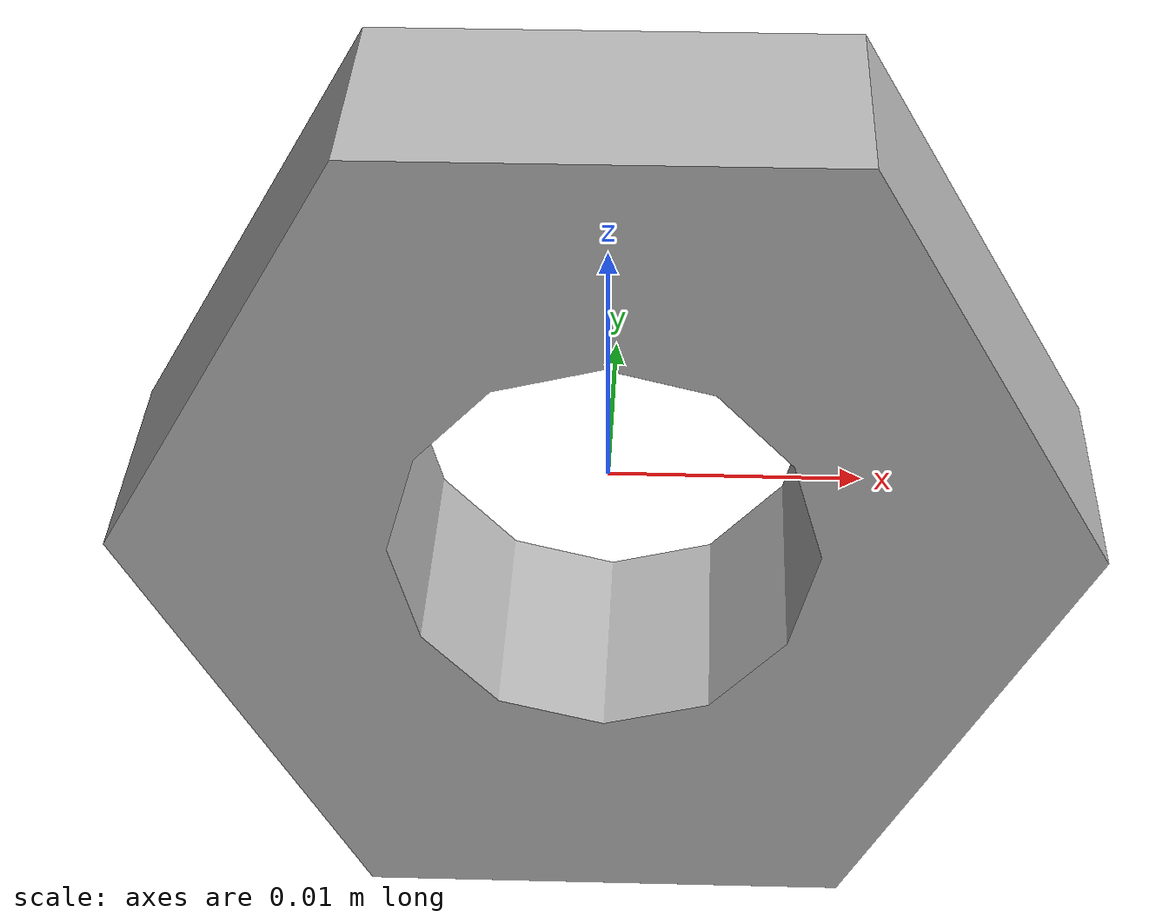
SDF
<?xml version='1.0'?>
<sdf version="1.3">

  <model name="Nut">
    <pose> 0.0 0.0 0.0  0.0 0.0 0.0 </pose>
    <static>false</static>

    <link name="body">
      <inertial>
        <mass>0.10</mass>
        <inertia>
          <ixx>0.555</ixx>
          <ixy>0.000</ixy>
          <ixz>0.000</ixz>
          <iyy>0.976</iyy>
          <iyz>0.000</iyz>
          <izz>0.555</izz>
        </inertia>
      </inertial>

      <visual name="visual">
        <geometry>
          <mesh><uri>model://Nut/meshes/nut.dae</uri><scale>0.6 0.6 0.6</scale></mesh>
        </geometry>
        <material>
          <emissive> 1 1 1 1 </emissive>
        </material>
      </visual>

      <collision name="collision">
        <geometry>
          <mesh><uri>model://Nut/meshes/nut.dae</uri><scale>0.6 0.6 0.6</scale></mesh>
        </geometry>
	<surface>
          <bounce>
            <restitution_coefficient> 0 </restitution_coefficient>
            <threshold> 0 </threshold>
          </bounce>
          <contact>
            <ode>
              <max_vel>0</max_vel>
            </ode>
          </contact>
        </surface>
      </collision>

    </link>
  </model>
</sdf>
